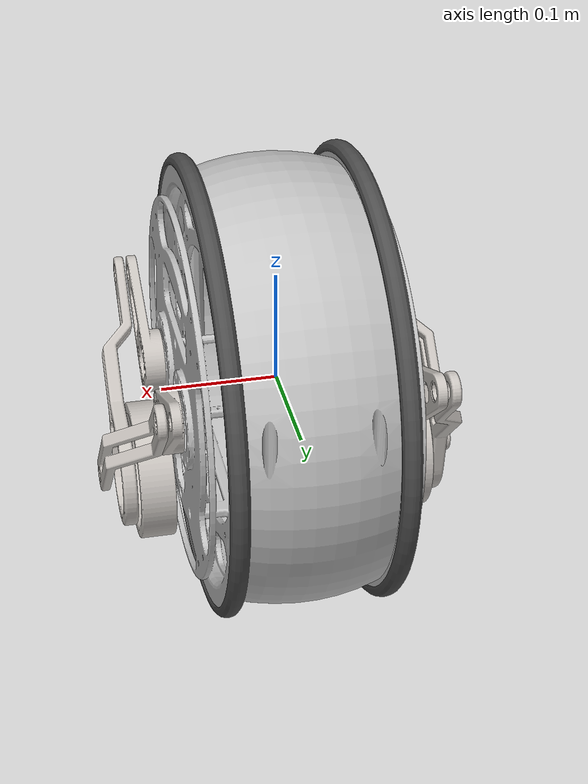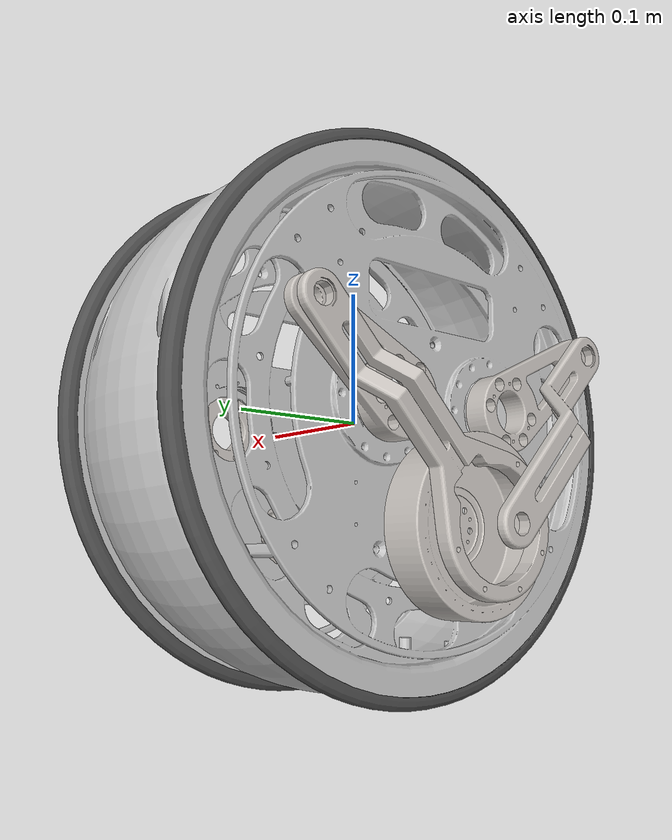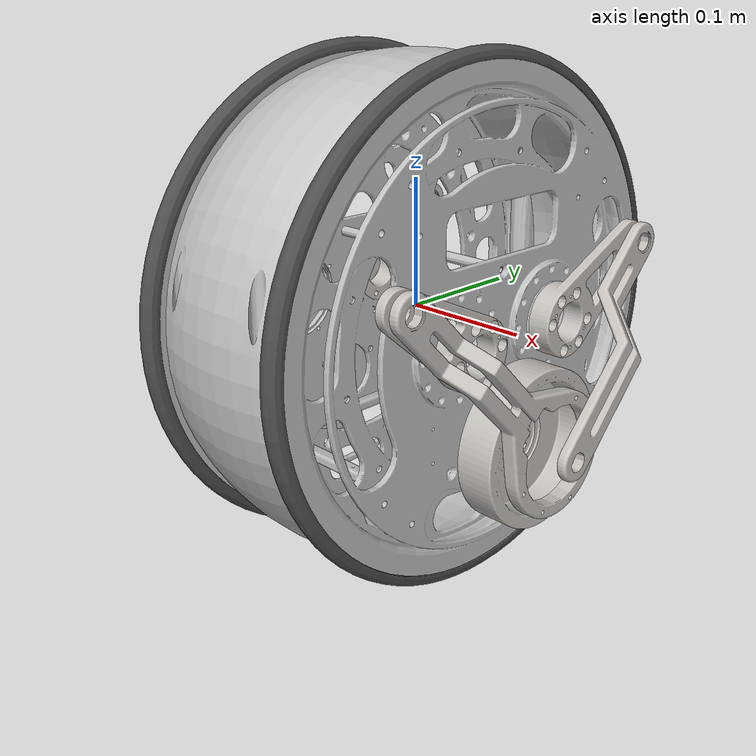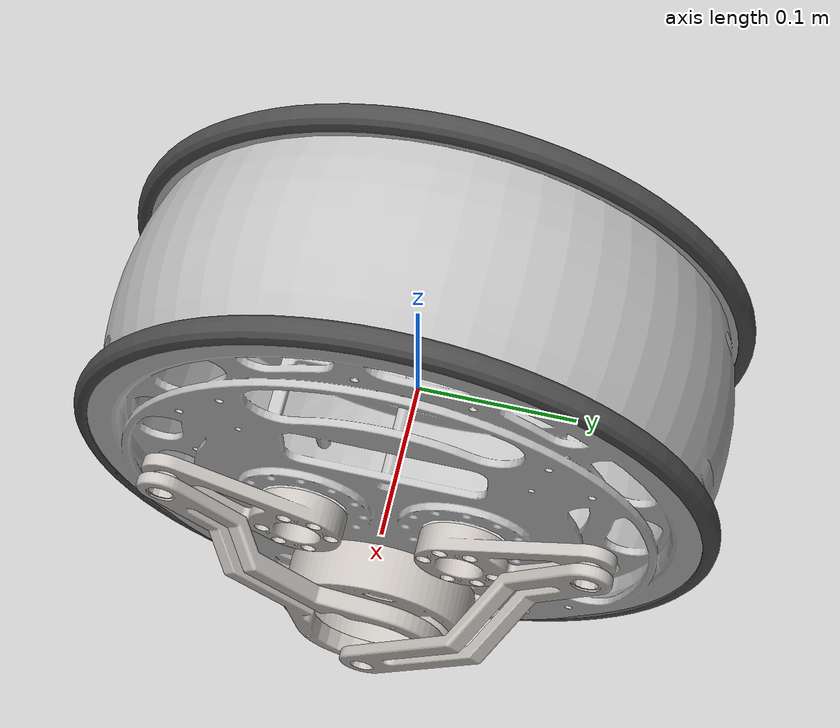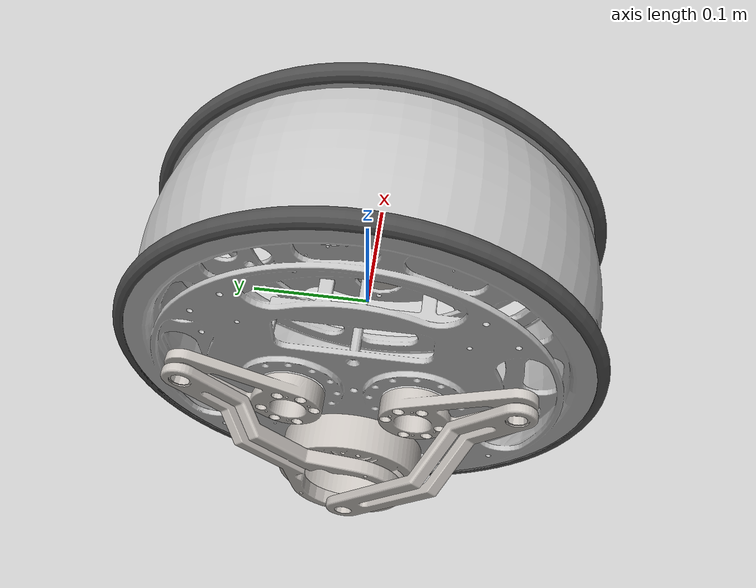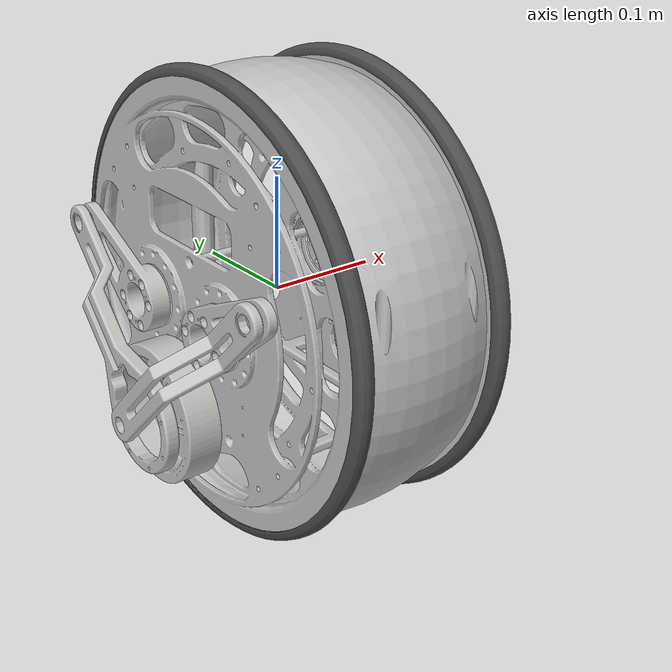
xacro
<?xml version="1.0"?>

<robot name="myrobot" xmlns:xacro="http://www.ros.org/wiki/xacro">

 <xacro:include filename="$(find whell_describe)/xacro/gazebo.xacro"/>
 <xacro:include filename="$(find whell_describe)/xacro/materials.xacro"/>

 <xacro:arg name="DEBUG" default="false"/>

    <!-- Debug mode will hung up the robot, use "true" or "false" to switch it. -->
    <xacro:if value="$(arg DEBUG)">
        <link name="world"/>
        <joint name="base_static_joint" type="fixed">
            <origin rpy="0 0 0" xyz="0 0 0"/>
            <parent link="world"/>
            <child link="dummy"/>
        </joint>
    </xacro:if>

<!-- dummy -->
  <link name="dummy">
          <visual>
            <origin rpy="0 0 0" xyz="0 0 0"/>
            <geometry>
                <box size="0.001 0.001 0.001"/>
            </geometry>
        </visual>
  </link>
  <joint name="dummy_joint" type="fixed">
    <parent link="dummy"/>
    <child link="base_link"/>
  </joint>

  <link
    name="base_link">
    <inertial>
      <origin
        xyz="-4.46807509552636E-07 -3.03780031174009E-06 -0.0203695556415421"
        rpy="0 0 0" />
      <mass
        value="7.22272430383922" />
      <inertia
        ixx="0.0954744307414278"
        ixy="2.28771796641983E-05"
        ixz="-1.18504025384915E-07"
        iyy="0.0439545752329199"
        iyz="-7.15870663478248E-07"
        izz="0.0562080692014873"/>
    </inertial>
    <visual>
      <origin
        xyz="0 0 0"
        rpy="0 0 0" />
      <geometry>
        <mesh
          filename="package://whell_describe/meshes/base_link.STL" />
      </geometry>
      <material
        name="">
        <color
          rgba="0.752941176470588 0.752941176470588 0.752941176470588 1" />
      </material>
    </visual>
    <collision>
      <origin
        xyz="0 0 0"
        rpy="0 0 0" />
      <geometry>
        <mesh
          filename="package://whell_describe/meshes/base_link.STL" />
      </geometry>
    </collision>
  </link>

<!-- imu_link -->
<link name="imu_link"/>

<joint name="imu_joint_fix" type="fixed">
  <parent link="base_link"/>
  <child link="imu_link"/>
  <origin
    xyz="0 0 0"
    rpy="0 0 0"/>
</joint>

  <link
    name="leg1_Link">
    <inertial>
      <origin
        xyz="-0.0017952323919647 0.0201686547952831 0.0131344142052371"
        rpy="0 0 0" />
      <mass
        value="0.107780286994776" />
      <inertia
        ixx="0.000160570412456261"
        ixy="7.02314714146653E-06"
        ixz="4.57365429116415E-06"
        iyy="6.02075344701354E-05"
        iyz="-5.16932895953821E-05"
        izz="0.000105921587244055" />
    </inertial>
    <visual>
      <origin
        xyz="0 0 0"
        rpy="0 0 0" />
      <geometry>
        <mesh
          filename="package://whell_describe/meshes/leg1_Link.STL" />
      </geometry>
      <material
        name="">
        <color
          rgba="0.776470588235294 0.756862745098039 0.737254901960784 1" />
      </material>
    </visual>
    <collision>
      <origin
        xyz="0 0 0"
        rpy="0 0 0" />
      <geometry>
        <mesh
          filename="package://whell_describe/meshes/leg1_Link.STL" />
      </geometry>
    </collision>
  </link>
  <joint
    name="leg1_joint"
    type="revolute">
    <origin
      xyz="-0.1015 0.0499999999999998 0"
      rpy="0 0 0" />
    <parent
      link="base_link" />
    <child
      link="leg1_Link" />
    <axis
      xyz="-1 0 0" />
    <limit
      lower="-0.21"
      upper="2"
      effort="33"
      velocity="21" />
    <dynamics damping="0.1" friction="0.01"/>

  </joint>

 <transmission name="motor_leg1_joint_effort_controller">
    <type>transmission_interface/SimpleTransmission</type>
    <joint name="leg1_joint">
      <hardwareInterface>hardware_interface/EffortJointInterface</hardwareInterface>
    </joint>
    <actuator name="motor3">
      <hardwareInterface>hardware_interface/EffortJointInterface</hardwareInterface>
      <mechanicalReduction>1</mechanicalReduction>
    </actuator>
  </transmission>

  <link
    name="shank1_Link">
    <inertial>
      <origin
        xyz="-0.0145730362584171 -0.0843871017339916 -0.0868742129879856"
        rpy="0 0 0" />
      <mass
        value="0.179910472206487" />
      <inertia
        ixx="0.000891296395450373"
        ixy="-4.64314333408932E-05"
        ixz="-4.77998905816288E-05"
        iyy="0.000466964254826396"
        iyz="-0.000355091294112394"
        izz="0.000446332909144987" />
    </inertial>
    <visual>
      <origin
        xyz="0 0 0"
        rpy="0 0 0" />
      <geometry>
        <mesh
          filename="package://whell_describe/meshes/shank1_Link.STL" />
      </geometry>
      <material
        name="">
        <color
          rgba="0.776470588235294 0.756862745098039 0.737254901960784 1" />
      </material>
    </visual>
    <collision>
      <origin
        xyz="0 0 0"
        rpy="0 0 0" />
      <geometry>
        <mesh
          filename="package://whell_describe/meshes/shank1_Link.STL" />
      </geometry>
    </collision>
  </link>

  <joint
    name="shank1_joint"
    type="continuous">
    <origin
      xyz="-0.0161 0.075418 0.049114"
      rpy="0 0 0" />
    <parent
      link="leg1_Link" />
    <child
      link="shank1_Link" />
    <axis
      xyz="1 0 0" />
    <limit
      lower="-2.4"
      upper="0.72"
      effort="0"
      velocity="100" />
    <dynamics friction="0.005"/>
  </joint>

  <link
    name="wheel1_Link">
    <inertial>
      <origin
        xyz="0.00354162426172294 -2.04324877658297E-16 -2.22044604925031E-16"
        rpy="0 0 0" />
      <mass
        value="0.410353278347292" />
      <inertia
        ixx="0.00104917461619554"
        ixy="-2.85639796916951E-17"
        ixz="-3.04502907729282E-17"
        iyy="0.000555029807719852"
        iyz="4.11478559118823E-09"
        izz="0.000555006382870292" />
    </inertial>
    <visual>
      <origin
        xyz="0 0 0"
        rpy="0 0 0" />
      <geometry>
        <mesh
          filename="package://whell_describe/meshes/wheel1_Link.STL" />
      </geometry>
      <material
        name="">
        <color
          rgba="0.776470588235294 0.756862745098039 0.737254901960784 1" />
      </material>
    </visual>
    <collision>
      <origin
        xyz="0 0 0"
        rpy="0 0 0" />
      <geometry>
        <mesh
          filename="package://whell_describe/meshes/wheel1_Link.STL" />
      </geometry>
    </collision>
  </link>

  <joint
    name="wheel1_joint"
    type="continuous">
    <origin
      xyz="0.004 -0.12542 -0.12911"
      rpy="0 0 0" />
    <parent
      link="shank1_Link" />
    <child
      link="wheel1_Link" />
    <axis
      xyz="1 0 0" />
        <limit
      effort="40"
      velocity="40" />
    <dynamics damping="0.1" friction="0.01"/>
  </joint>

 <transmission name="motor_leg_left_wheel4_joint">
    <type>transmission_interface/SimpleTransmission</type>
    <joint name="wheel1_joint">
      <hardwareInterface>hardware_interface/EffortJointInterface</hardwareInterface>
    </joint>
    <actuator name="stand_up_left_motor">
      <hardwareInterface>hardware_interface/EffortJointInterface</hardwareInterface>
      <mechanicalReduction>1</mechanicalReduction>
    </actuator>
  </transmission>

  <link
    name="leg2_Link">
    <inertial>
      <origin
        xyz="-0.0017952331696216 -0.0201686842808947 0.0131343546263725"
        rpy="0 0 0" />
      <mass
        value="0.107780249103117" />
      <inertia
        ixx="0.000160570374710653"
        ixy="-7.02313882055019E-06"
        ixz="4.57367014414127E-06"
        iyy="6.02073888584599E-05"
        iyz="5.16932191805976E-05"
        izz="0.000105921695018239" />
    </inertial>
    <visual>
      <origin
        xyz="0 0 0"
        rpy="0 0 0" />
      <geometry>
        <mesh
          filename="package://whell_describe/meshes/leg2_Link.STL" />
      </geometry>
      <material
        name="">
        <color
          rgba="0.776470588235294 0.756862745098039 0.737254901960784 1" />
      </material>
    </visual>
    <collision>
      <origin
        xyz="0 0 0"
        rpy="0 0 0" />
      <geometry>
        <mesh
          filename="package://whell_describe/meshes/leg2_Link.STL" />
      </geometry>
    </collision>
  </link>
  <joint
    name="leg2_joint"
    type="revolute">
    <origin
      xyz="-0.1015 -0.05 0"
      rpy="0 0 0" />
    <parent
      link="base_link" />
    <child
      link="leg2_Link" />
    <axis
      xyz="-1 0 0" />
          <limit
      lower="-2"
      upper="0.2"
      effort="33"
      velocity="21" />
    <dynamics damping="0.1" friction="0.01"/>
  </joint>

 <transmission name="motor_leg2_joint_effort_controller">
    <type>transmission_interface/SimpleTransmission</type>
    <joint name="leg2_joint">
      <hardwareInterface>hardware_interface/EffortJointInterface</hardwareInterface>
    </joint>
    <actuator name="motor4">
      <hardwareInterface>hardware_interface/EffortJointInterface</hardwareInterface>
      <mechanicalReduction>1</mechanicalReduction>
    </actuator>
  </transmission>

  <link
    name="shank2_Link">
    <inertial>
      <origin
        xyz="-0.0213519530085939 0.0618445749093326 -0.063667298227435"
        rpy="0 0 0" />
      <mass
        value="0.110969681386475" />
      <inertia
        ixx="0.00037579886255165"
        ixy="6.47426948579346E-05"
        ixz="-6.66508334419095E-05"
        iyy="0.000223149504950312"
        iyz="0.000177630248884272"
        izz="0.000212828916611607" />
    </inertial>
    <visual>
      <origin
        xyz="0 0 0"
        rpy="0 0 0" />
      <geometry>
        <mesh
          filename="package://whell_describe/meshes/shank2_Link.STL" />
      </geometry>
      <material
        name="">
        <color
          rgba="0.776470588235294 0.756862745098039 0.737254901960784 1" />
      </material>
    </visual>
    <collision>
      <origin
        xyz="0 0 0"
        rpy="0 0 0" />
      <geometry>
        <mesh
          filename="package://whell_describe/meshes/shank2_Link.STL" />
      </geometry>
    </collision>
  </link>
  <joint
    name="shank2_joint"
    type="continuous">
    <origin
      xyz="-0.0161000000000003 -0.0754176068674125 0.0491139957078696"
      rpy="0 0 0" />
    <parent
      link="leg2_Link" />
    <child
      link="shank2_Link" />
    <axis
      xyz="-1 0 0" />
          <limit
      lower="-2.4"
      upper="0.72"
      effort="0"
      velocity="100" />
    <dynamics friction="0.005"/>
  </joint>
  <link
    name="leg3_Link">
    <inertial>
      <origin
        xyz="0.00179523239196487 -0.0201686547952831 0.0131344142052372"
        rpy="0 0 0" />
      <mass
        value="0.107780286994777" />
      <inertia
        ixx="0.000160570412456261"
        ixy="7.02314714146646E-06"
        ixz="-4.5736542911641E-06"
        iyy="6.02075344701358E-05"
        iyz="5.16932895953824E-05"
        izz="0.000105921587244055" />
    </inertial>
    <visual>
      <origin
        xyz="0 0 0"
        rpy="0 0 0" />
      <geometry>
        <mesh
          filename="package://whell_describe/meshes/leg3_Link.STL" />
      </geometry>
      <material
        name="">
        <color
          rgba="0.776470588235294 0.756862745098039 0.737254901960784 1" />
      </material>
    </visual>
    <collision>
      <origin
        xyz="0 0 0"
        rpy="0 0 0" />
      <geometry>
        <mesh
          filename="package://whell_describe/meshes/leg3_Link.STL" />
      </geometry>
    </collision>
  </link>

  <joint
    name="leg3_joint"
    type="revolute">
    <origin
      xyz="0.1015 -0.05 0"
      rpy="0 0 0" />
    <parent
      link="base_link" />
    <child
      link="leg3_Link" />
    <axis
      xyz="1 0 0" />
    <limit
      lower="-0.2"
      upper="2"
      effort="33"
      velocity="21" />
    <dynamics damping="0.1" friction="0.01"/>
  </joint>

 <transmission name="motor_leg3_joint_effort_controller">
    <type>transmission_interface/SimpleTransmission</type>
    <joint name="leg3_joint">
      <hardwareInterface>hardware_interface/EffortJointInterface</hardwareInterface>
    </joint>
    <actuator name="motor5">
      <hardwareInterface>hardware_interface/EffortJointInterface</hardwareInterface>
      <mechanicalReduction>1</mechanicalReduction>
    </actuator>
  </transmission>

  <link
    name="shank3_Link">
    <inertial>
      <origin
        xyz="0.0145730362584168 0.084387101733991 -0.0868742129879853"
        rpy="0 0 0" />
      <mass
        value="0.179910472206486" />
      <inertia
        ixx="0.000891296395450371"
        ixy="-4.64314333408934E-05"
        ixz="4.77998905816297E-05"
        iyy="0.000466964254826399"
        iyz="0.000355091294112392"
        izz="0.000446332909144982" />
    </inertial>
    <visual>
      <origin
        xyz="0 0 0"
        rpy="0 0 0" />
      <geometry>
        <mesh
          filename="package://whell_describe/meshes/shank3_Link.STL" />
      </geometry>
      <material
        name="">
        <color
          rgba="0.776470588235294 0.756862745098039 0.737254901960784 1" />
      </material>
    </visual>
    <collision>
      <origin
        xyz="0 0 0"
        rpy="0 0 0" />
      <geometry>
        <mesh
          filename="package://whell_describe/meshes/shank3_Link.STL" />
      </geometry>
    </collision>
  </link>
  <joint
    name="shank3_joint"
    type="continuous">
    <origin
      xyz="0.0161 -0.075418 0.049114"
      rpy="0 0 0" />
    <parent
      link="leg3_Link" />
    <child
      link="shank3_Link" />
    <axis
      xyz="-1 0 0" />

    <limit
      lower="-2.4"
      upper="0.72"
      effort="0"
      velocity="100" />
    <dynamics friction="0.005"/>
  </joint>
  <link
    name="wheel2_Link">
    <inertial>
      <origin
        xyz="-0.00354162426172289 2.8655932829755E-15 1.36002320516582E-15"
        rpy="0 0 0" />
      <mass
        value="0.410353278347292" />
      <inertia
        ixx="0.00104917461619554"
        ixy="4.6378984619299E-19"
        ixz="6.77337775593484E-19"
        iyy="0.000555019144316728"
        iyz="-1.23697982303607E-08"
        izz="0.000555017046273415" />
    </inertial>
    <visual>
      <origin
        xyz="0 0 0"
        rpy="0 0 0" />
      <geometry>
        <mesh
          filename="package://whell_describe/meshes/wheel2_Link.STL" />
      </geometry>
      <material
        name="">
        <color
          rgba="0.776470588235294 0.756862745098039 0.737254901960784 1" />
      </material>
    </visual>
    <collision>
      <origin
        xyz="0 0 0"
        rpy="0 0 0" />
      <geometry>
        <mesh
          filename="package://whell_describe/meshes/wheel2_Link.STL" />
      </geometry>
    </collision>
  </link>
  <joint
    name="wheel2_joint"
    type="continuous">
    <origin
      xyz="-0.004 0.12542 -0.12911"
      rpy="0 0 0" />
    <parent
      link="shank3_Link" />
    <child
      link="wheel2_Link" />
    <axis
      xyz="1 0 0" />
              <limit
      effort="40"
      velocity="40"/>
    <dynamics damping="0.1" friction="0.01"/>
  </joint>

 <transmission name="motor_leg_right_wheel4_joint">
    <type>transmission_interface/SimpleTransmission</type>
    <joint name="wheel2_joint">
      <hardwareInterface>hardware_interface/EffortJointInterface</hardwareInterface>
    </joint>
    <actuator name="stand_up_right_motor">
      <hardwareInterface>hardware_interface/EffortJointInterface</hardwareInterface>
      <mechanicalReduction>1</mechanicalReduction>
    </actuator>
  </transmission>

  <link
    name="leg4_Link">
    <inertial>
      <origin
        xyz="0.00179523316962174 -0.0201686842808948 -0.0131343546263721"
        rpy="0 0 0" />
      <mass
        value="0.107780249103117" />
      <inertia
        ixx="0.000160570374710654"
        ixy="7.02313882055005E-06"
        ixz="4.5736701441411E-06"
        iyy="6.02073888584595E-05"
        iyz="-5.16932191805974E-05"
        izz="0.000105921695018239" />
    </inertial>
    <visual>
      <origin
        xyz="0 0 0"
        rpy="0 0 0" />
      <geometry>
        <mesh
          filename="package://whell_describe/meshes/leg4_Link.STL" />
      </geometry>
      <material
        name="">
        <color
          rgba="0.776470588235294 0.756862745098039 0.737254901960784 1" />
      </material>
    </visual>
    <collision>
      <origin
        xyz="0 0 0"
        rpy="0 0 0" />
      <geometry>
        <mesh
          filename="package://whell_describe/meshes/leg4_Link.STL" />
      </geometry>
    </collision>
  </link>
  <joint
    name="leg4_joint"
    type="revolute">
    <origin
      xyz="0.1015 0.05 0"
      rpy="3.1416 0 0" />
    <parent
      link="base_link" />
    <child
      link="leg4_Link" />
    <axis
      xyz="1 0 0" />
                <limit
      lower="-2"
      upper="0.2"
      effort="33"
      velocity="21" />
    <dynamics damping="0.1" friction="0.01"/>
  </joint>

 <transmission name="motor_leg4_joint_effort_controller">
    <type>transmission_interface/SimpleTransmission</type>
    <joint name="leg4_joint">
      <hardwareInterface>hardware_interface/EffortJointInterface</hardwareInterface>
    </joint>
    <actuator name="motor6">
      <hardwareInterface>hardware_interface/EffortJointInterface</hardwareInterface>
      <mechanicalReduction>1</mechanicalReduction>
    </actuator>
  </transmission>

  <link
    name="shank4_Link">
    <inertial>
      <origin
        xyz="0.0213519530085934 -0.0618445749093328 -0.063667298227434"
        rpy="0 0 0" />
      <mass
        value="0.110969681386475" />
      <inertia
        ixx="0.000375798862551648"
        ixy="6.47426948579352E-05"
        ixz="6.66508334419093E-05"
        iyy="0.00022314950495031"
        iyz="-0.000177630248884271"
        izz="0.000212828916611609" />
    </inertial>
    <visual>
      <origin
        xyz="0 0 0"
        rpy="0 0 0" />
      <geometry>
        <mesh
          filename="package://whell_describe/meshes/shank4_Link.STL" />
      </geometry>
      <material
        name="">
        <color
          rgba="0.776470588235294 0.756862745098039 0.737254901960784 1" />
      </material>
    </visual>
    <collision>
      <origin
        xyz="0 0 0"
        rpy="0 0 0" />
      <geometry>
        <mesh
          filename="package://whell_describe/meshes/shank4_Link.STL" />
      </geometry>
    </collision>
  </link>
  <joint
    name="shank4_joint"
    type="continuous">
    <origin
      xyz="0.0161 -0.075418 -0.049114"
      rpy="3.1416 0 0" />
    <parent
      link="leg4_Link" />
    <child
      link="shank4_Link" />
    <axis
      xyz="1 0 0" />
                <limit
      lower="-2.4"
      upper="0.72"
      effort="0"
      velocity="100" />
    <dynamics friction="0.005"/>
  </joint>
  <link
    name="wheel3_Link">
    <inertial>
      <origin
        xyz="-2.77555756156289E-17 4.36088455364593E-17 2.02761771147199E-16"
        rpy="0 0 0" />
      <mass
        value="0.0632598262485195" />
      <inertia
        ixx="0.00242059945488792"
        ixy="-2.39877532612219E-19"
        ixz="-2.14203771470045E-18"
        iyy="0.00121214011620725"
        iyz="1.71947688292624E-19"
        izz="0.00121214011620725" />
    </inertial>
    <visual>
      <origin
        xyz="0 0 0"
        rpy="0 0 0" />
      <geometry>
        <mesh
          filename="package://whell_describe/meshes/wheel3_Link.STL" />
      </geometry>
      <material
        name="">
        <color
          rgba="0.298039215686275 0.298039215686275 0.298039215686275 1" />
      </material>
    </visual>
    <collision>
      <origin
        xyz="0 0 0"
        rpy="0 0 0" />
      <geometry>
        <mesh
          filename="package://whell_describe/meshes/wheel3_Link.STL" />
      </geometry>
    </collision>
  </link>
  <joint
    name="wheel3_joint"
    type="continuous">
    <origin
      xyz="-0.068 0 0"
      rpy="0 0 0" />
    <parent
      link="base_link" />
    <child
      link="wheel3_Link" />
    <axis
      xyz="1 0 0" />
              <limit
      effort="12"
      velocity="38" />
    <dynamics damping="0.1" friction="0.01"/>
  </joint>

  <transmission name="motor_wheel3_joint">
    <type>transmission_interface/SimpleTransmission</type>
    <joint name="wheel3_joint">
      <hardwareInterface>hardware_interface/EffortJointInterface</hardwareInterface>
    </joint>
    <actuator name="motor1">
      <hardwareInterface>hardware_interface/EffortJointInterface</hardwareInterface>
      <mechanicalReduction>1</mechanicalReduction>
    </actuator>
  </transmission>

  <link
    name="wheel4_Link">
    <inertial>
      <origin
        xyz="3.46944695195361E-16 3.88965656475174E-17 -1.09251345945501E-16"
        rpy="0 0 0" />
      <mass
        value="0.0632598262485197" />
      <inertia
        ixx="0.00242059945488793"
        ixy="-4.83254489522524E-19"
        ixz="1.04694715430991E-19"
        iyy="0.00121214011620725"
        iyz="2.13134665352864E-20"
        izz="0.00121214011620725" />
    </inertial>
    <visual>
      <origin
        xyz="0 0 0"
        rpy="0 0 0" />
      <geometry>
        <mesh
          filename="package://whell_describe/meshes/wheel4_Link.STL" />
      </geometry>
      <material
        name="">
        <color
          rgba="0.298039215686275 0.298039215686275 0.298039215686275 1" />
      </material>
    </visual>
    <collision>
      <origin
        xyz="0 0 0"
        rpy="0 0 0" />
      <geometry>
        <mesh
          filename="package://whell_describe/meshes/wheel4_Link.STL" />
      </geometry>
    </collision>
  </link>
  <joint
    name="wheel4_joint"
    type="continuous">
    <origin
      xyz="0.068 0 0"
      rpy="3.1416 0 0" />
    <parent
      link="base_link" />
    <child
      link="wheel4_Link" />
    <axis
      xyz="1 0 0" />
              <limit
      effort="12"
      velocity="38" />
    <dynamics damping="0.1" friction="0.01"/>
  </joint>

 <transmission name="motor_wheel4_joint">
    <type>transmission_interface/SimpleTransmission</type>
    <joint name="wheel4_joint">
      <hardwareInterface>hardware_interface/EffortJointInterface</hardwareInterface>
    </joint>
    <actuator name="motor2">
      <hardwareInterface>hardware_interface/EffortJointInterface</hardwareInterface>
      <mechanicalReduction>1</mechanicalReduction>
    </actuator>
  </transmission>

</robot>
